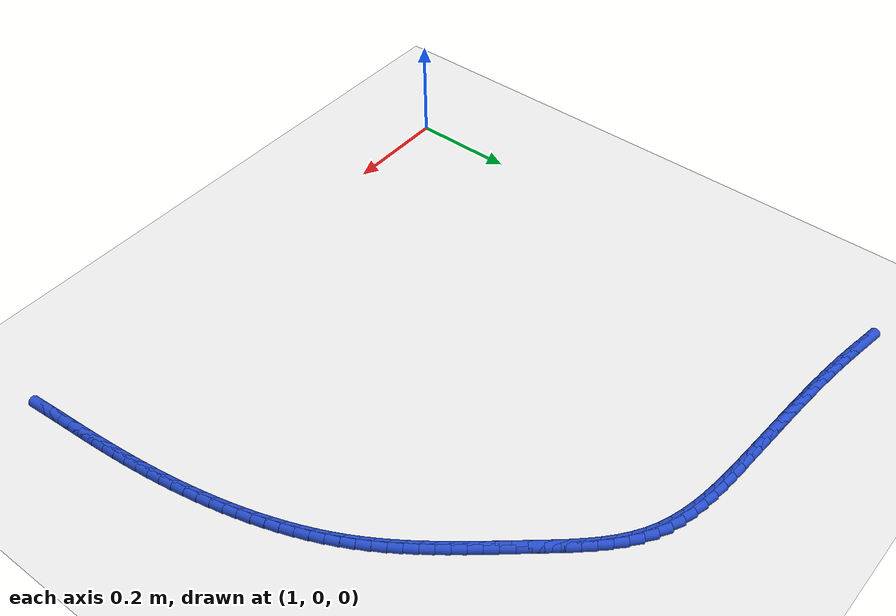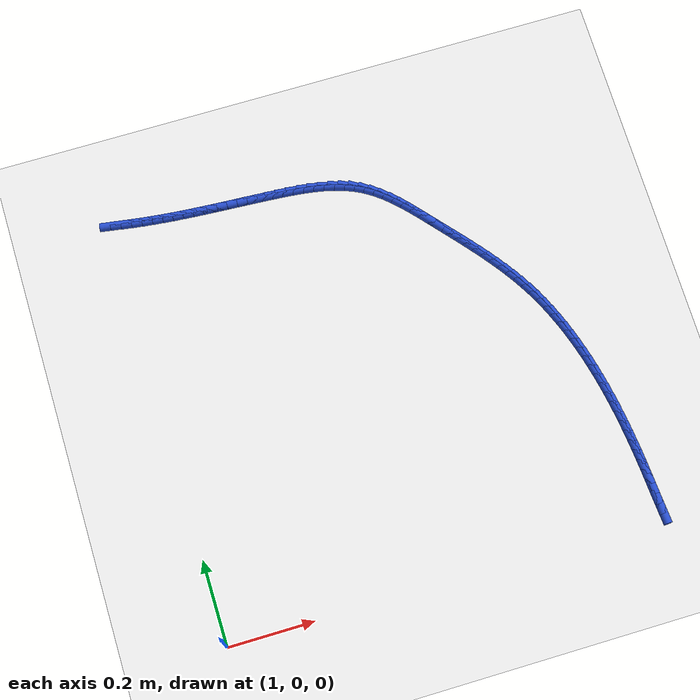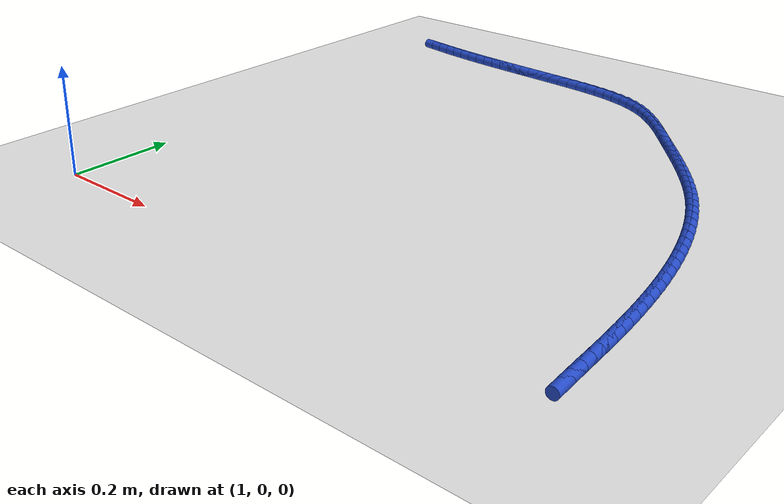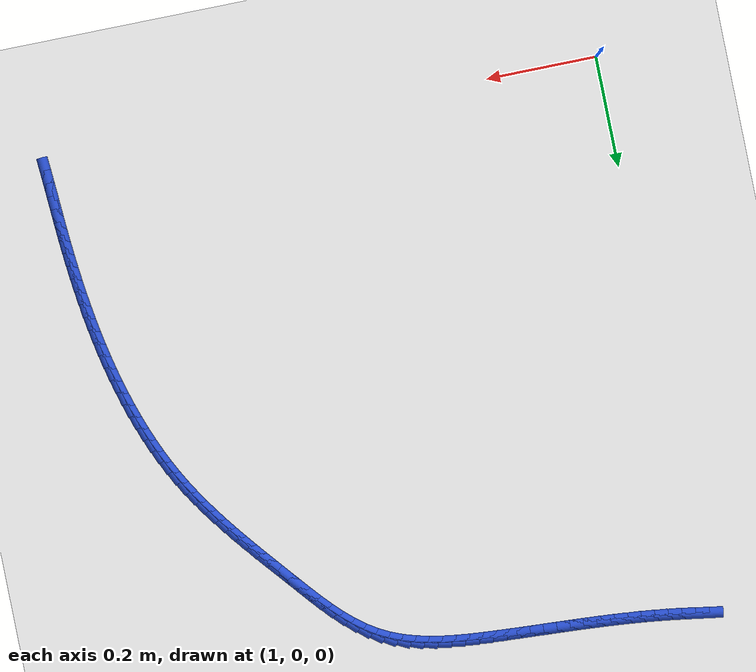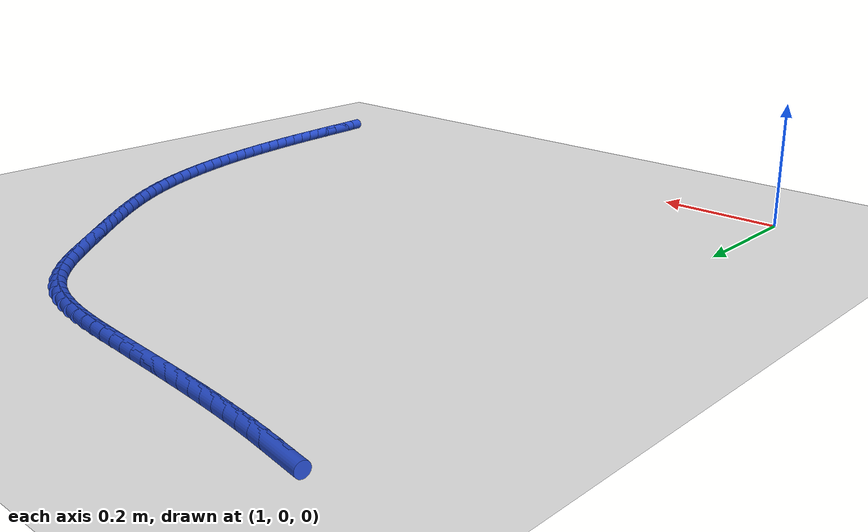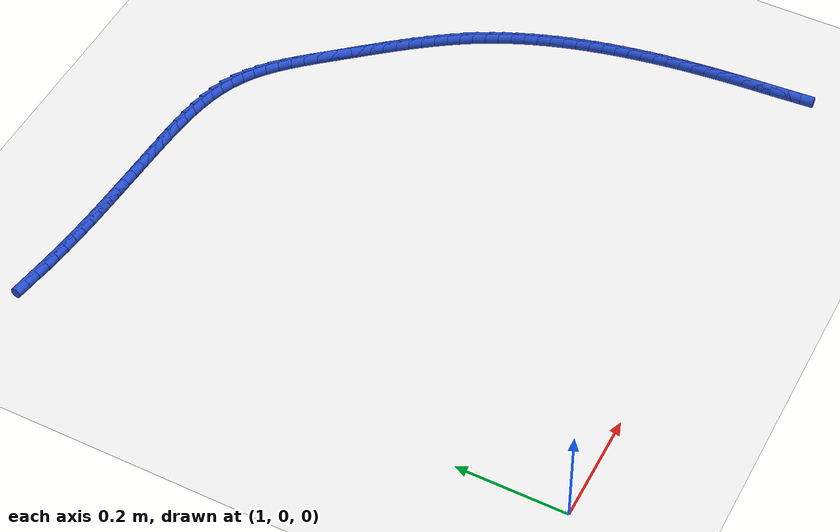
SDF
<sdf version="1.6">
 <world name="default">
  <model name="ground_plane">
   <static>1</static>
   <link name="link">
    <collision name="collision">
     <geometry><plane><normal>0 0 1</normal><size>100 100</size></plane></geometry>
     <surface><friction><ode><mu>100</mu><mu2>50</mu2></ode></friction></surface>
    </collision>
    <visual name="visual">
     <cast_shadows>0</cast_shadows>
     <geometry><plane><normal>0 0 1</normal><size>100 100</size></plane></geometry>
     <material>
      <script><uri>file://media/materials/scripts/gazebo.material</uri><name>Gazebo/WhiteGlow</name></script>
     </material>
    </visual>
   </link>
  </model>
  <model name="line">
   <link name="link_66">
    <pose>1.0155061783756574 1.0090039073140686 0.01 0 1.57 -0.1502464807227111</pose>
    <collision name="collision">
     <geometry><cylinder><radius>0.01</radius><length>0.08</length></cylinder></geometry>
    </collision>
    <visual name="visual">
     <material>
      <script><name>Gazebo/Blue</name><uri>file://media/materials/scripts/gazebo.material</uri></script>
     </material>
     <geometry><cylinder><radius>0.01</radius><length>0.08</length></cylinder></geometry>
    </visual>
   </link>
   <link name="link_67">
    <pose>1.0399944670005332 1.0052966904807337 0.01 0 1.57 -0.14477960748365393</pose>
    <collision name="collision">
     <geometry><cylinder><radius>0.01</radius><length>0.08</length></cylinder></geometry>
    </collision>
    <visual name="visual">
     <material>
      <script><name>Gazebo/Blue</name><uri>file://media/materials/scripts/gazebo.material</uri></script>
     </material>
     <geometry><cylinder><radius>0.01</radius><length>0.08</length></cylinder></geometry>
    </visual>
   </link>
   <link name="link_68">
    <pose>1.064379615768186 1.0017413420515509 0.01 0 1.57 -0.12995610621099063</pose>
    <collision name="collision">
     <geometry><cylinder><radius>0.01</radius><length>0.08</length></cylinder></geometry>
    </collision>
    <visual name="visual">
     <material>
      <script><name>Gazebo/Blue</name><uri>file://media/materials/scripts/gazebo.material</uri></script>
     </material>
     <geometry><cylinder><radius>0.01</radius><length>0.08</length></cylinder></geometry>
    </visual>
   </link>
   <link name="link_69">
    <pose>1.0886082165744133 0.9985748414193785 0.01 0 1.57 -0.11521904429800589</pose>
    <collision name="collision">
     <geometry><cylinder><radius>0.01</radius><length>0.08</length></cylinder></geometry>
    </collision>
    <visual name="visual">
     <material>
      <script><name>Gazebo/Blue</name><uri>file://media/materials/scripts/gazebo.material</uri></script>
     </material>
     <geometry><cylinder><radius>0.01</radius><length>0.08</length></cylinder></geometry>
    </visual>
   </link>
   <link name="link_70">
    <pose>1.1126992076722189 0.9957867518214668 0.01 0 1.57 -0.10198044818327509</pose>
    <collision name="collision">
     <geometry><cylinder><radius>0.01</radius><length>0.08</length></cylinder></geometry>
    </collision>
    <visual name="visual">
     <material>
      <script><name>Gazebo/Blue</name><uri>file://media/materials/scripts/gazebo.material</uri></script>
     </material>
     <geometry><cylinder><radius>0.01</radius><length>0.08</length></cylinder></geometry>
    </visual>
   </link>
   <link name="link_71">
    <pose>1.136681505458269 0.9933325124003616 0.01 0 1.57 -0.09032766471716086</pose>
    <collision name="collision">
     <geometry><cylinder><radius>0.01</radius><length>0.08</length></cylinder></geometry>
    </collision>
    <visual name="visual">
     <material>
      <script><name>Gazebo/Blue</name><uri>file://media/materials/scripts/gazebo.material</uri></script>
     </material>
     <geometry><cylinder><radius>0.01</radius><length>0.08</length></cylinder></geometry>
    </visual>
   </link>
   <link name="link_72">
    <pose>1.1605840263292284 0.9911675622986075 0.01 0 1.57 -0.08033357540572866</pose>
    <collision name="collision">
     <geometry><cylinder><radius>0.01</radius><length>0.08</length></cylinder></geometry>
    </collision>
    <visual name="visual">
     <material>
      <script><name>Gazebo/Blue</name><uri>file://media/materials/scripts/gazebo.material</uri></script>
     </material>
     <geometry><cylinder><radius>0.01</radius><length>0.08</length></cylinder></geometry>
    </visual>
   </link>
   <link name="link_73">
    <pose>1.1844356866817618 0.9892473406587505 0.01 0 1.57 -0.07205608753173567</pose>
    <collision name="collision">
     <geometry><cylinder><radius>0.01</radius><length>0.08</length></cylinder></geometry>
    </collision>
    <visual name="visual">
     <material>
      <script><name>Gazebo/Blue</name><uri>file://media/materials/scripts/gazebo.material</uri></script>
     </material>
     <geometry><cylinder><radius>0.01</radius><length>0.08</length></cylinder></geometry>
    </visual>
   </link>
   <link name="link_74">
    <pose>1.2082654029125344 0.9875272866233356 0.01 0 1.57 -0.06553791084764184</pose>
    <collision name="collision">
     <geometry><cylinder><radius>0.01</radius><length>0.08</length></cylinder></geometry>
    </collision>
    <visual name="visual">
     <material>
      <script><name>Gazebo/Blue</name><uri>file://media/materials/scripts/gazebo.material</uri></script>
     </material>
     <geometry><cylinder><radius>0.01</radius><length>0.08</length></cylinder></geometry>
    </visual>
   </link>
   <link name="link_75">
    <pose>1.2321020914182121 0.9859628393349082 0.01 0 1.57 -0.06080657561331124</pose>
    <collision name="collision">
     <geometry><cylinder><radius>0.01</radius><length>0.08</length></cylinder></geometry>
    </collision>
    <visual name="visual">
     <material>
      <script><name>Gazebo/Blue</name><uri>file://media/materials/scripts/gazebo.material</uri></script>
     </material>
     <geometry><cylinder><radius>0.01</radius><length>0.08</length></cylinder></geometry>
    </visual>
   </link>
   <link name="link_76">
    <pose>1.2559746685954598 0.9845094379360139 0.01 0 1.57 -0.05787464670463201</pose>
    <collision name="collision">
     <geometry><cylinder><radius>0.01</radius><length>0.08</length></cylinder></geometry>
    </collision>
    <visual name="visual">
     <material>
      <script><name>Gazebo/Blue</name><uri>file://media/materials/scripts/gazebo.material</uri></script>
     </material>
     <geometry><cylinder><radius>0.01</radius><length>0.08</length></cylinder></geometry>
    </visual>
   </link>
   <link name="link_77">
    <pose>1.2799120508409425 0.9831225215691978 0.01 0 1.57 -0.056740092264982736</pose>
    <collision name="collision">
     <geometry><cylinder><radius>0.01</radius><length>0.08</length></cylinder></geometry>
    </collision>
    <visual name="visual">
     <material>
      <script><name>Gazebo/Blue</name><uri>file://media/materials/scripts/gazebo.material</uri></script>
     </material>
     <geometry><cylinder><radius>0.01</radius><length>0.08</length></cylinder></geometry>
    </visual>
   </link>
   <link name="link_78">
    <pose>1.3039431545513256 0.9817575293770052 0.01 0 1.57 -0.05738677258817593</pose>
    <collision name="collision">
     <geometry><cylinder><radius>0.01</radius><length>0.08</length></cylinder></geometry>
    </collision>
    <visual name="visual">
     <material>
      <script><name>Gazebo/Blue</name><uri>file://media/materials/scripts/gazebo.material</uri></script>
     </material>
     <geometry><cylinder><radius>0.01</radius><length>0.08</length></cylinder></geometry>
    </visual>
   </link>
   <link name="link_79">
    <pose>1.3280968961232742 0.9803699005019815 0.01 0 1.57 -0.05978502414848717</pose>
    <collision name="collision">
     <geometry><cylinder><radius>0.01</radius><length>0.08</length></cylinder></geometry>
    </collision>
    <visual name="visual">
     <material>
      <script><name>Gazebo/Blue</name><uri>file://media/materials/scripts/gazebo.material</uri></script>
     </material>
     <geometry><cylinder><radius>0.01</radius><length>0.08</length></cylinder></geometry>
    </visual>
   </link>
   <link name="link_80">
    <pose>1.352402191953453 0.9789150740866722 0.01 0 1.57 -0.06389232349797773</pose>
    <collision name="collision">
     <geometry><cylinder><radius>0.01</radius><length>0.08</length></cylinder></geometry>
    </collision>
    <visual name="visual">
     <material>
      <script><name>Gazebo/Blue</name><uri>file://media/materials/scripts/gazebo.material</uri></script>
     </material>
     <geometry><cylinder><radius>0.01</radius><length>0.08</length></cylinder></geometry>
    </visual>
   </link>
   <link name="link_81">
    <pose>1.376887958438528 0.9773484892736225 0.01 0 1.57 -0.07030337394977601</pose>
    <collision name="collision">
     <geometry><cylinder><radius>0.01</radius><length>0.08</length></cylinder></geometry>
    </collision>
    <visual name="visual">
     <material>
      <script><name>Gazebo/Blue</name><uri>file://media/materials/scripts/gazebo.material</uri></script>
     </material>
     <geometry><cylinder><radius>0.01</radius><length>0.08</length></cylinder></geometry>
    </visual>
   </link>
   <link name="link_82">
    <pose>1.401567299136934 0.9756105841758266 0.01 0 1.57 -0.08386037239892496</pose>
    <collision name="collision">
     <geometry><cylinder><radius>0.01</radius><length>0.08</length></cylinder></geometry>
    </collision>
    <visual name="visual">
     <material>
      <script><name>Gazebo/Blue</name><uri>file://media/materials/scripts/gazebo.material</uri></script>
     </material>
     <geometry><cylinder><radius>0.01</radius><length>0.08</length></cylinder></geometry>
    </visual>
   </link>
   <link name="link_83">
    <pose>1.4263341472229103 0.9735287445605274 0.01 0 1.57 -0.10690162577751675</pose>
    <collision name="collision">
     <geometry><cylinder><radius>0.01</radius><length>0.08</length></cylinder></geometry>
    </collision>
    <visual name="visual">
     <material>
      <script><name>Gazebo/Blue</name><uri>file://media/materials/scripts/gazebo.material</uri></script>
     </material>
     <geometry><cylinder><radius>0.01</radius><length>0.08</length></cylinder></geometry>
    </visual>
   </link>
   <link name="link_84">
    <pose>1.4510281084271066 0.9708788178452513 0.01 0 1.57 -0.13981649093638737</pose>
    <collision name="collision">
     <geometry><cylinder><radius>0.01</radius><length>0.08</length></cylinder></geometry>
    </collision>
    <visual name="visual">
     <material>
      <script><name>Gazebo/Blue</name><uri>file://media/materials/scripts/gazebo.material</uri></script>
     </material>
     <geometry><cylinder><radius>0.01</radius><length>0.08</length></cylinder></geometry>
    </visual>
   </link>
   <link name="link_85">
    <pose>1.4754885119893713 0.9674363891513684 0.01 0 1.57 -0.1832171345334267</pose>
    <collision name="collision">
     <geometry><cylinder><radius>0.01</radius><length>0.08</length></cylinder></geometry>
    </collision>
    <visual name="visual">
     <material>
      <script><name>Gazebo/Blue</name><uri>file://media/materials/scripts/gazebo.material</uri></script>
     </material>
     <geometry><cylinder><radius>0.01</radius><length>0.08</length></cylinder></geometry>
    </visual>
   </link>
   <link name="link_86">
    <pose>1.4995546871495538 0.9629770436002505 0.01 0 1.57 -0.2378750551094901</pose>
    <collision name="collision">
     <geometry><cylinder><radius>0.01</radius><length>0.08</length></cylinder></geometry>
    </collision>
    <visual name="visual">
     <material>
      <script><name>Gazebo/Blue</name><uri>file://media/materials/scripts/gazebo.material</uri></script>
     </material>
     <geometry><cylinder><radius>0.01</radius><length>0.08</length></cylinder></geometry>
    </visual>
   </link>
   <link name="link_87">
    <pose>1.5230659631475032 0.9572763663132682 0.01 0 1.57 -0.3045930907229512</pose>
    <collision name="collision">
     <geometry><cylinder><radius>0.01</radius><length>0.08</length></cylinder></geometry>
    </collision>
    <visual name="visual">
     <material>
      <script><name>Gazebo/Blue</name><uri>file://media/materials/scripts/gazebo.material</uri></script>
     </material>
     <geometry><cylinder><radius>0.01</radius><length>0.08</length></cylinder></geometry>
    </visual>
   </link>
   <link name="link_88">
    <pose>1.5458616692230691 0.950109942411793 0.01 0 1.57 -0.3839938694614253</pose>
    <collision name="collision">
     <geometry><cylinder><radius>0.01</radius><length>0.08</length></cylinder></geometry>
    </collision>
    <visual name="visual">
     <material>
      <script><name>Gazebo/Blue</name><uri>file://media/materials/scripts/gazebo.material</uri></script>
     </material>
     <geometry><cylinder><radius>0.01</radius><length>0.08</length></cylinder></geometry>
    </visual>
   </link>
   <link name="link_89">
    <pose>1.5677811346161001 0.9412533570171957 0.01 0 1.57 -0.47618323501179805</pose>
    <collision name="collision">
     <geometry><cylinder><radius>0.01</radius><length>0.08</length></cylinder></geometry>
    </collision>
    <visual name="visual">
     <material>
      <script><name>Gazebo/Blue</name><uri>file://media/materials/scripts/gazebo.material</uri></script>
     </material>
     <geometry><cylinder><radius>0.01</radius><length>0.08</length></cylinder></geometry>
    </visual>
   </link>
   <link name="link_90">
    <pose>1.5886639554872408 0.9304826412674718 0.01 0 1.57 -0.5736160544802491</pose>
    <collision name="collision">
     <geometry><cylinder><radius>0.01</radius><length>0.08</length></cylinder></geometry>
    </collision>
    <visual name="visual">
     <material>
      <script><name>Gazebo/Blue</name><uri>file://media/materials/scripts/gazebo.material</uri></script>
     </material>
     <geometry><cylinder><radius>0.01</radius><length>0.08</length></cylinder></geometry>
    </visual>
   </link>
   <link name="link_91">
    <pose>1.6084318106021847 0.9177109838659994 0.01 0 1.57 -0.6586706170777785</pose>
    <collision name="collision">
     <geometry><cylinder><radius>0.01</radius><length>0.08</length></cylinder></geometry>
    </collision>
    <visual name="visual">
     <material>
      <script><name>Gazebo/Blue</name><uri>file://media/materials/scripts/gazebo.material</uri></script>
     </material>
     <geometry><cylinder><radius>0.01</radius><length>0.08</length></cylinder></geometry>
    </visual>
   </link>
   <link name="link_92">
    <pose>1.6272039789720898 0.9031817575858497 0.01 0 1.57 -0.7285558704382927</pose>
    <collision name="collision">
     <geometry><cylinder><radius>0.01</radius><length>0.08</length></cylinder></geometry>
    </collision>
    <visual name="visual">
     <material>
      <script><name>Gazebo/Blue</name><uri>file://media/materials/scripts/gazebo.material</uri></script>
     </material>
     <geometry><cylinder><radius>0.01</radius><length>0.08</length></cylinder></geometry>
    </visual>
   </link>
   <link name="link_93">
    <pose>1.6451288716844976 0.8871870140239364 0.01 0 1.57 -0.7837171015214781</pose>
    <collision name="collision">
     <geometry><cylinder><radius>0.01</radius><length>0.08</length></cylinder></geometry>
    </collision>
    <visual name="visual">
     <material>
      <script><name>Gazebo/Blue</name><uri>file://media/materials/scripts/gazebo.material</uri></script>
     </material>
     <geometry><cylinder><radius>0.01</radius><length>0.08</length></cylinder></geometry>
    </visual>
   </link>
   <link name="link_94">
    <pose>1.6623548998269528 0.8700188047771741 0.01 0 1.57 -0.8249467419692791</pose>
    <collision name="collision">
     <geometry><cylinder><radius>0.01</radius><length>0.08</length></cylinder></geometry>
    </collision>
    <visual name="visual">
     <material>
      <script><name>Gazebo/Blue</name><uri>file://media/materials/scripts/gazebo.material</uri></script>
     </material>
     <geometry><cylinder><radius>0.01</radius><length>0.08</length></cylinder></geometry>
    </visual>
   </link>
   <link name="link_95">
    <pose>1.6790304744869964 0.8519691814424754 0.01 0 1.57 -0.8530485087246199</pose>
    <collision name="collision">
     <geometry><cylinder><radius>0.01</radius><length>0.08</length></cylinder></geometry>
    </collision>
    <visual name="visual">
     <material>
      <script><name>Gazebo/Blue</name><uri>file://media/materials/scripts/gazebo.material</uri></script>
     </material>
     <geometry><cylinder><radius>0.01</radius><length>0.08</length></cylinder></geometry>
    </visual>
   </link>
   <link name="link_96">
    <pose>1.6953040067521723 0.8333301956167548 0.01 0 1.57 -0.8686353999077101</pose>
    <collision name="collision">
     <geometry><cylinder><radius>0.01</radius><length>0.08</length></cylinder></geometry>
    </collision>
    <visual name="visual">
     <material>
      <script><name>Gazebo/Blue</name><uri>file://media/materials/scripts/gazebo.material</uri></script>
     </material>
     <geometry><cylinder><radius>0.01</radius><length>0.08</length></cylinder></geometry>
    </visual>
   </link>
   <link name="link_97">
    <pose>1.7113239077100235 0.8143938988969255 0.01 0 1.57 -0.8724033281059163</pose>
    <collision name="collision">
     <geometry><cylinder><radius>0.01</radius><length>0.08</length></cylinder></geometry>
    </collision>
    <visual name="visual">
     <material>
      <script><name>Gazebo/Blue</name><uri>file://media/materials/scripts/gazebo.material</uri></script>
     </material>
     <geometry><cylinder><radius>0.01</radius><length>0.08</length></cylinder></geometry>
    </visual>
   </link>
   <link name="link_98">
    <pose>1.727233382484311 0.7954437834079604 0.01 0 1.57 -0.8721098246205473</pose>
    <collision name="collision">
     <geometry><cylinder><radius>0.01</radius><length>0.08</length></cylinder></geometry>
    </collision>
    <visual name="visual">
     <material>
      <script><name>Gazebo/Blue</name><uri>file://media/materials/scripts/gazebo.material</uri></script>
     </material>
     <geometry><cylinder><radius>0.01</radius><length>0.08</length></cylinder></geometry>
    </visual>
   </link>
   <link name="link_99">
    <pose>1.743070716423376 0.7765908356809759 0.01 0 1.57 -0.8749433701593016</pose>
    <collision name="collision">
     <geometry><cylinder><radius>0.01</radius><length>0.08</length></cylinder></geometry>
    </collision>
    <visual name="visual">
     <material>
      <script><name>Gazebo/Blue</name><uri>file://media/materials/scripts/gazebo.material</uri></script>
     </material>
     <geometry><cylinder><radius>0.01</radius><length>0.08</length></cylinder></geometry>
    </visual>
   </link>
   <link name="link_100">
    <pose>1.758776901083957 0.7577860750413702 0.01 0 1.57 -0.8812247711810116</pose>
    <collision name="collision">
     <geometry><cylinder><radius>0.01</radius><length>0.08</length></cylinder></geometry>
    </collision>
    <visual name="visual">
     <material>
      <script><name>Gazebo/Blue</name><uri>file://media/materials/scripts/gazebo.material</uri></script>
     </material>
     <geometry><cylinder><radius>0.01</radius><length>0.08</length></cylinder></geometry>
    </visual>
   </link>
   <link name="link_101">
    <pose>1.7742892499788663 0.7389744734974416 0.01 0 1.57 -0.8910020256855988</pose>
    <collision name="collision">
     <geometry><cylinder><radius>0.01</radius><length>0.08</length></cylinder></geometry>
    </collision>
    <visual name="visual">
     <material>
      <script><name>Gazebo/Blue</name><uri>file://media/materials/scripts/gazebo.material</uri></script>
     </material>
     <geometry><cylinder><radius>0.01</radius><length>0.08</length></cylinder></geometry>
    </visual>
   </link>
   <link name="link_102">
    <pose>1.7895450766209153 0.7201010030574885 0.01 0 1.57 -0.9043188925358673</pose>
    <collision name="collision">
     <geometry><cylinder><radius>0.01</radius><length>0.08</length></cylinder></geometry>
    </collision>
    <visual name="visual">
     <material>
      <script><name>Gazebo/Blue</name><uri>file://media/materials/scripts/gazebo.material</uri></script>
     </material>
     <geometry><cylinder><radius>0.01</radius><length>0.08</length></cylinder></geometry>
    </visual>
   </link>
   <link name="link_103">
    <pose>1.8044816945229158 0.7011106357298078 0.01 0 1.57 -0.92121106254102</pose>
    <collision name="collision">
     <geometry><cylinder><radius>0.01</radius><length>0.08</length></cylinder></geometry>
    </collision>
    <visual name="visual">
     <material>
      <script><name>Gazebo/Blue</name><uri>file://media/materials/scripts/gazebo.material</uri></script>
     </material>
     <geometry><cylinder><radius>0.01</radius><length>0.08</length></cylinder></geometry>
    </visual>
   </link>
   <link name="link_104">
    <pose>1.8190364171976796 0.6819483435226981 0.01 0 1.57 -0.9417008341921729</pose>
    <collision name="collision">
     <geometry><cylinder><radius>0.01</radius><length>0.08</length></cylinder></geometry>
    </collision>
    <visual name="visual">
     <material>
      <script><name>Gazebo/Blue</name><uri>file://media/materials/scripts/gazebo.material</uri></script>
     </material>
     <geometry><cylinder><radius>0.01</radius><length>0.08</length></cylinder></geometry>
    </visual>
   </link>
   <link name="link_105">
    <pose>1.8331465581580169 0.6625590984444569 0.01 0 1.57 -0.9657903029394819</pose>
    <collision name="collision">
     <geometry><cylinder><radius>0.01</radius><length>0.08</length></cylinder></geometry>
    </collision>
    <visual name="visual">
     <material>
      <script><name>Gazebo/Blue</name><uri>file://media/materials/scripts/gazebo.material</uri></script>
     </material>
     <geometry><cylinder><radius>0.01</radius><length>0.08</length></cylinder></geometry>
    </visual>
   </link>
   <link name="link_106">
    <pose>1.84674943091674 0.6428878725033824 0.01 0 1.57 -0.9934532058948115</pose>
    <collision name="collision">
     <geometry><cylinder><radius>0.01</radius><length>0.08</length></cylinder></geometry>
    </collision>
    <visual name="visual">
     <material>
      <script><name>Gazebo/Blue</name><uri>file://media/materials/scripts/gazebo.material</uri></script>
     </material>
     <geometry><cylinder><radius>0.01</radius><length>0.08</length></cylinder></geometry>
    </visual>
   </link>
   <link name="link_107">
    <pose>1.8597823489866605 0.6228796377077725 0.01 0 1.57 -1.0246257623761723</pose>
    <collision name="collision">
     <geometry><cylinder><radius>0.01</radius><length>0.08</length></cylinder></geometry>
    </collision>
    <visual name="visual">
     <material>
      <script><name>Gazebo/Blue</name><uri>file://media/materials/scripts/gazebo.material</uri></script>
     </material>
     <geometry><cylinder><radius>0.01</radius><length>0.08</length></cylinder></geometry>
    </visual>
   </link>
   <link name="link_108">
    <pose>1.8721826258805896 0.602479366065925 0.01 0 1.57 -1.0591957781073136</pose>
    <collision name="collision">
     <geometry><cylinder><radius>0.01</radius><length>0.08</length></cylinder></geometry>
    </collision>
    <visual name="visual">
     <material>
      <script><name>Gazebo/Blue</name><uri>file://media/materials/scripts/gazebo.material</uri></script>
     </material>
     <geometry><cylinder><radius>0.01</radius><length>0.08</length></cylinder></geometry>
    </visual>
   </link>
   <link name="link_109">
    <pose>1.8838875972864524 0.5816320552625445 0.01 0 1.57 -1.0957940083628617</pose>
    <collision name="collision">
     <geometry><cylinder><radius>0.01</radius><length>0.08</length></cylinder></geometry>
    </collision>
    <visual name="visual">
     <material>
      <script><name>Gazebo/Blue</name><uri>file://media/materials/scripts/gazebo.material</uri></script>
     </material>
     <geometry><cylinder><radius>0.01</radius><length>0.08</length></cylinder></geometry>
    </visual>
   </link>
   <link name="link_110">
    <pose>1.8948549298192179 0.560306244017911 0.01 0 1.57 -1.1309105932242889</pose>
    <collision name="collision">
     <geometry><cylinder><radius>0.01</radius><length>0.08</length></cylinder></geometry>
    </collision>
    <visual name="visual">
     <material>
      <script><name>Gazebo/Blue</name><uri>file://media/materials/scripts/gazebo.material</uri></script>
     </material>
     <geometry><cylinder><radius>0.01</radius><length>0.08</length></cylinder></geometry>
    </visual>
   </link>
   <link name="link_111">
    <pose>1.905100187372745 0.5385375098990483 0.01 0 1.57 -1.1639990956253161</pose>
    <collision name="collision">
     <geometry><cylinder><radius>0.01</radius><length>0.08</length></cylinder></geometry>
    </collision>
    <visual name="visual">
     <material>
      <script><name>Gazebo/Blue</name><uri>file://media/materials/scripts/gazebo.material</uri></script>
     </material>
     <geometry><cylinder><radius>0.01</radius><length>0.08</length></cylinder></geometry>
    </visual>
   </link>
   <link name="link_112">
    <pose>1.9146491716555514 0.5163732847656333 0.01 0 1.57 -1.1951396086059152</pose>
    <collision name="collision">
     <geometry><cylinder><radius>0.01</radius><length>0.08</length></cylinder></geometry>
    </collision>
    <visual name="visual">
     <material>
      <script><name>Gazebo/Blue</name><uri>file://media/materials/scripts/gazebo.material</uri></script>
     </material>
     <geometry><cylinder><radius>0.01</radius><length>0.08</length></cylinder></geometry>
    </visual>
   </link>
   <link name="link_113">
    <pose>1.9235276843761548 0.4938610004773434 0.01 0 1.57 -1.2244185165526196</pose>
    <collision name="collision">
     <geometry><cylinder><radius>0.01</radius><length>0.08</length></cylinder></geometry>
    </collision>
    <visual name="visual">
     <material>
      <script><name>Gazebo/Blue</name><uri>file://media/materials/scripts/gazebo.material</uri></script>
     </material>
     <geometry><cylinder><radius>0.01</radius><length>0.08</length></cylinder></geometry>
    </visual>
   </link>
   <link name="link_114">
    <pose>1.9317615272430722 0.4710480888938545 0.01 0 1.57 -1.2519252510121128</pose>
    <collision name="collision">
     <geometry><cylinder><radius>0.01</radius><length>0.08</length></cylinder></geometry>
    </collision>
    <visual name="visual">
     <material>
      <script><name>Gazebo/Blue</name><uri>file://media/materials/scripts/gazebo.material</uri></script>
     </material>
     <geometry><cylinder><radius>0.01</radius><length>0.08</length></cylinder></geometry>
    </visual>
   </link>
   <link name="link_115">
    <pose>1.9393765019648221 0.4479819818748443 0.01 0 1.57 -1.2777497156162112</pose>
    <collision name="collision">
     <geometry><cylinder><radius>0.01</radius><length>0.08</length></cylinder></geometry>
    </collision>
    <visual name="visual">
     <material>
      <script><name>Gazebo/Blue</name><uri>file://media/materials/scripts/gazebo.material</uri></script>
     </material>
     <geometry><cylinder><radius>0.01</radius><length>0.08</length></cylinder></geometry>
    </visual>
   </link>
   <link name="link_116">
    <pose>1.9463984102499212 0.4247101112799895 0.01 0 1.57 -1.3020008740578843</pose>
    <collision name="collision">
     <geometry><cylinder><radius>0.01</radius><length>0.08</length></cylinder></geometry>
    </collision>
    <visual name="visual">
     <material>
      <script><name>Gazebo/Blue</name><uri>file://media/materials/scripts/gazebo.material</uri></script>
     </material>
     <geometry><cylinder><radius>0.01</radius><length>0.08</length></cylinder></geometry>
    </visual>
   </link>
   <link name="link_117">
    <pose>1.9528532284634896 0.4012773913786856 0.01 0 1.57 -1.3248860818610524</pose>
    <collision name="collision">
     <geometry><cylinder><radius>0.01</radius><length>0.08</length></cylinder></geometry>
    </collision>
    <visual name="visual">
     <material>
      <script><name>Gazebo/Blue</name><uri>file://media/materials/scripts/gazebo.material</uri></script>
     </material>
     <geometry><cylinder><radius>0.01</radius><length>0.08</length></cylinder></geometry>
    </visual>
   </link>
   <link name="link_118">
    <pose>1.958768165540348 0.37771096954536243 0.01 0 1.57 -1.3464832387039967</pose>
    <collision name="collision">
     <geometry><cylinder><radius>0.01</radius><length>0.08</length></cylinder></geometry>
    </collision>
    <visual name="visual">
     <material>
      <script><name>Gazebo/Blue</name><uri>file://media/materials/scripts/gazebo.material</uri></script>
     </material>
     <geometry><cylinder><radius>0.01</radius><length>0.08</length></cylinder></geometry>
    </visual>
   </link>
   <link name="link_119">
    <pose>1.9641709608584002 0.3540303470744466 0.01 0 1.57 -1.3668042923302213</pose>
    <collision name="collision">
     <geometry><cylinder><radius>0.01</radius><length>0.08</length></cylinder></geometry>
    </collision>
    <visual name="visual">
     <material>
      <script><name>Gazebo/Blue</name><uri>file://media/materials/scripts/gazebo.material</uri></script>
     </material>
     <geometry><cylinder><radius>0.01</radius><length>0.08</length></cylinder></geometry>
    </visual>
   </link>
   <link name="link_120">
    <pose>1.9690893558607938 0.33025499549089343 0.01 0 1.57 -1.3858636971065104</pose>
    <collision name="collision">
     <geometry><cylinder><radius>0.01</radius><length>0.08</length></cylinder></geometry>
    </collision>
    <visual name="visual">
     <material>
      <script><name>Gazebo/Blue</name><uri>file://media/materials/scripts/gazebo.material</uri></script>
     </material>
     <geometry><cylinder><radius>0.01</radius><length>0.08</length></cylinder></geometry>
    </visual>
   </link>
   <link name="link_121">
    <pose>1.9735510919906765 0.3064043863196586 0.01 0 1.57 -1.4036776605768913</pose>
    <collision name="collision">
     <geometry><cylinder><radius>0.01</radius><length>0.08</length></cylinder></geometry>
    </collision>
    <visual name="visual">
     <material>
      <script><name>Gazebo/Blue</name><uri>file://media/materials/scripts/gazebo.material</uri></script>
     </material>
     <geometry><cylinder><radius>0.01</radius><length>0.08</length></cylinder></geometry>
    </visual>
   </link>
   <link name="link_122">
    <pose>1.977583910691194 0.2824979910856974 0.01 0 1.57 -1.4202632435311586</pose>
    <collision name="collision">
     <geometry><cylinder><radius>0.01</radius><length>0.08</length></cylinder></geometry>
    </collision>
    <visual name="visual">
     <material>
      <script><name>Gazebo/Blue</name><uri>file://media/materials/scripts/gazebo.material</uri></script>
     </material>
     <geometry><cylinder><radius>0.01</radius><length>0.08</length></cylinder></geometry>
    </visual>
   </link>
   <link name="link_123">
    <pose>1.9812155534054943 0.25855528131396555 0.01 0 1.57 -1.4356375533769974</pose>
    <collision name="collision">
     <geometry><cylinder><radius>0.01</radius><length>0.08</length></cylinder></geometry>
    </collision>
    <visual name="visual">
     <material>
      <script><name>Gazebo/Blue</name><uri>file://media/materials/scripts/gazebo.material</uri></script>
     </material>
     <geometry><cylinder><radius>0.01</radius><length>0.08</length></cylinder></geometry>
    </visual>
   </link>
   <link name="link_124">
    <pose>1.984473761576724 0.23459572852941799 0.01 0 1.57 -1.4498170235924066</pose>
    <collision name="collision">
     <geometry><cylinder><radius>0.01</radius><length>0.08</length></cylinder></geometry>
    </collision>
    <visual name="visual">
     <material>
      <script><name>Gazebo/Blue</name><uri>file://media/materials/scripts/gazebo.material</uri></script>
     </material>
     <geometry><cylinder><radius>0.01</radius><length>0.08</length></cylinder></geometry>
    </visual>
   </link>
   <link name="link_125">
    <pose>1.9873862766480306 0.21063880425701045 0.01 0 1.57 -1.462816769554637</pose>
    <collision name="collision">
     <geometry><cylinder><radius>0.01</radius><length>0.08</length></cylinder></geometry>
    </collision>
    <visual name="visual">
     <material>
      <script><name>Gazebo/Blue</name><uri>file://media/materials/scripts/gazebo.material</uri></script>
     </material>
     <geometry><cylinder><radius>0.01</radius><length>0.08</length></cylinder></geometry>
    </visual>
   </link>
   <link name="link_126">
    <pose>1.9899808400625605 0.18670398002169838 0.01 0 1.57 -1.474650009488848</pose>
    <collision name="collision">
     <geometry><cylinder><radius>0.01</radius><length>0.08</length></cylinder></geometry>
    </collision>
    <visual name="visual">
     <material>
      <script><name>Gazebo/Blue</name><uri>file://media/materials/scripts/gazebo.material</uri></script>
     </material>
     <geometry><cylinder><radius>0.01</radius><length>0.08</length></cylinder></geometry>
    </visual>
   </link>
   <link name="link_127">
    <pose>1.9922851932634609 0.16281072734843727 0.01 0 1.57 -1.4853275384246716</pose>
    <collision name="collision">
     <geometry><cylinder><radius>0.01</radius><length>0.08</length></cylinder></geometry>
    </collision>
    <visual name="visual">
     <material>
      <script><name>Gazebo/Blue</name><uri>file://media/materials/scripts/gazebo.material</uri></script>
     </material>
     <geometry><cylinder><radius>0.01</radius><length>0.08</length></cylinder></geometry>
    </visual>
   </link>
   <link name="link_128">
    <pose>1.9943270776938784 0.13897851776218245 0.01 0 1.57 -1.4948277684073714</pose>
    <collision name="collision">
     <geometry><cylinder><radius>0.01</radius><length>0.08</length></cylinder></geometry>
    </collision>
    <visual name="visual">
     <material>
      <script><name>Gazebo/Blue</name><uri>file://media/materials/scripts/gazebo.material</uri></script>
     </material>
     <geometry><cylinder><radius>0.01</radius><length>0.08</length></cylinder></geometry>
    </visual>
   </link>
   <link name="link_129">
    <pose>1.9961350021862005 0.11522599153349955 0.01 0 1.57 -1.5022931349054551</pose>
    <collision name="collision">
     <geometry><cylinder><radius>0.01</radius><length>0.08</length></cylinder></geometry>
    </collision>
    <visual name="visual">
     <material>
      <script><name>Gazebo/Blue</name><uri>file://media/materials/scripts/gazebo.material</uri></script>
     </material>
     <geometry><cylinder><radius>0.01</radius><length>0.08</length></cylinder></geometry>
    </visual>
   </link>
   <link name="link_130">
    <pose>1.9977595722277788 0.09154785330742445 0.01 0 1.57 -1.5067146004454124</pose>
    <collision name="collision">
     <geometry><cylinder><radius>0.01</radius><length>0.08</length></cylinder></geometry>
    </collision>
    <visual name="visual">
     <material>
      <script><name>Gazebo/Blue</name><uri>file://media/materials/scripts/gazebo.material</uri></script>
     </material>
     <geometry><cylinder><radius>0.01</radius><length>0.08</length></cylinder></geometry>
    </visual>
   </link>
   <link name="link_131">
    <pose>1.999276285170672 0.0679118442653788 0.01 0 1.57 -1.5079998475770866</pose>
    <collision name="collision">
     <geometry><cylinder><radius>0.01</radius><length>0.08</length></cylinder></geometry>
    </collision>
    <visual name="visual">
     <material>
      <script><name>Gazebo/Blue</name><uri>file://media/materials/scripts/gazebo.material</uri></script>
     </material>
     <geometry><cylinder><radius>0.01</radius><length>0.08</length></cylinder></geometry>
    </visual>
   </link>
   <link name="link_132">
    <pose>2.0007619672857744 0.04428426607209255 0.01 0 1.57 -1.5061384501953852</pose>
    <collision name="collision">
     <geometry><cylinder><radius>0.01</radius><length>0.08</length></cylinder></geometry>
    </collision>
    <visual name="visual">
     <material>
      <script><name>Gazebo/Blue</name><uri>file://media/materials/scripts/gazebo.material</uri></script>
     </material>
     <geometry><cylinder><radius>0.01</radius><length>0.08</length></cylinder></geometry>
    </visual>
   </link>
   <link name="link_133">
    <pose>2.0022934448439806 0.02063142039229572 0.01 0 1.57 -1.5011506990614818</pose>
    <collision name="collision">
     <geometry><cylinder><radius>0.01</radius><length>0.08</length></cylinder></geometry>
    </collision>
    <visual name="visual">
     <material>
      <script><name>Gazebo/Blue</name><uri>file://media/materials/scripts/gazebo.material</uri></script>
     </material>
     <geometry><cylinder><radius>0.01</radius><length>0.08</length></cylinder></geometry>
    </visual>
   </link>
  </model>
 </world>
</sdf>
